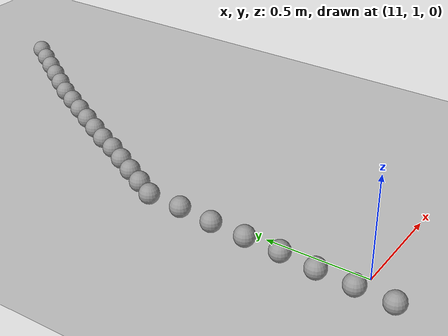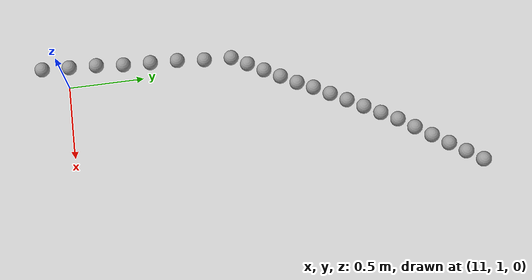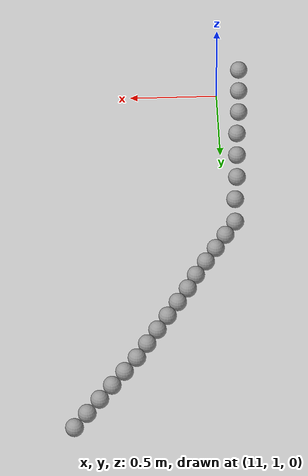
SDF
<sdf version="1.6">
 <world name="default">
  <model name="ground_plane">
   <static>1</static>
   <link name="link">
    <collision name="collision">
     <geometry><plane><normal>0 0 1</normal><size>100 100</size></plane></geometry>
     <surface><friction><ode><mu>100</mu><mu2>50</mu2></ode></friction></surface>
    </collision>
    <visual name="visual">
     <cast_shadows>0</cast_shadows>
     <geometry><plane><normal>0 0 1</normal><size>100 100</size></plane></geometry>
     <material>
      <script><uri>file://media/materials/scripts/gazebo.material</uri><name>Gazebo/Grey</name></script>
     </material>
    </visual>
   </link>
  </model>
  <model name="unit_sphere_0_415">
   <pose>11.890000 3.630000 0.050000 0 -0 0</pose>
   <link name="link">
    <inertial>
     <mass>1</mass>
     <inertia><ixx>0.1</ixx><ixy>0</ixy><ixz>0</ixz><iyy>0.1</iyy><iyz>0</iyz><izz>0.1</izz></inertia>
    </inertial>
    <collision name="collision"><geometry><sphere><radius>0.050000</radius></sphere></geometry></collision>
    <visual name="visual">
     <geometry><sphere><radius>0.050000</radius></sphere></geometry>
     <material>
      <script><name>Gazebo/Grey</name><uri>file://media/materials/scripts/gazebo.material</uri></script>
     </material>
    </visual>
   </link>
  </model>
  <model name="unit_sphere_0_416">
   <pose>11.820000 3.530000 0.050000 0 -0 0</pose>
   <link name="link">
    <inertial>
     <mass>1</mass>
     <inertia><ixx>0.1</ixx><ixy>0</ixy><ixz>0</ixz><iyy>0.1</iyy><iyz>0</iyz><izz>0.1</izz></inertia>
    </inertial>
    <collision name="collision"><geometry><sphere><radius>0.050000</radius></sphere></geometry></collision>
    <visual name="visual">
     <geometry><sphere><radius>0.050000</radius></sphere></geometry>
     <material>
      <script><name>Gazebo/Grey</name><uri>file://media/materials/scripts/gazebo.material</uri></script>
     </material>
    </visual>
   </link>
  </model>
  <model name="unit_sphere_0_417">
   <pose>11.750000 3.430000 0.050000 0 -0 0</pose>
   <link name="link">
    <inertial>
     <mass>1</mass>
     <inertia><ixx>0.1</ixx><ixy>0</ixy><ixz>0</ixz><iyy>0.1</iyy><iyz>0</iyz><izz>0.1</izz></inertia>
    </inertial>
    <collision name="collision"><geometry><sphere><radius>0.050000</radius></sphere></geometry></collision>
    <visual name="visual">
     <geometry><sphere><radius>0.050000</radius></sphere></geometry>
     <material>
      <script><name>Gazebo/Grey</name><uri>file://media/materials/scripts/gazebo.material</uri></script>
     </material>
    </visual>
   </link>
  </model>
  <model name="unit_sphere_0_418">
   <pose>11.680000 3.330000 0.050000 0 -0 0</pose>
   <link name="link">
    <inertial>
     <mass>1</mass>
     <inertia><ixx>0.1</ixx><ixy>0</ixy><ixz>0</ixz><iyy>0.1</iyy><iyz>0</iyz><izz>0.1</izz></inertia>
    </inertial>
    <collision name="collision"><geometry><sphere><radius>0.050000</radius></sphere></geometry></collision>
    <visual name="visual">
     <geometry><sphere><radius>0.050000</radius></sphere></geometry>
     <material>
      <script><name>Gazebo/Grey</name><uri>file://media/materials/scripts/gazebo.material</uri></script>
     </material>
    </visual>
   </link>
  </model>
  <model name="unit_sphere_0_419">
   <pose>11.610000 3.230000 0.050000 0 -0 0</pose>
   <link name="link">
    <inertial>
     <mass>1</mass>
     <inertia><ixx>0.1</ixx><ixy>0</ixy><ixz>0</ixz><iyy>0.1</iyy><iyz>0</iyz><izz>0.1</izz></inertia>
    </inertial>
    <collision name="collision"><geometry><sphere><radius>0.050000</radius></sphere></geometry></collision>
    <visual name="visual">
     <geometry><sphere><radius>0.050000</radius></sphere></geometry>
     <material>
      <script><name>Gazebo/Grey</name><uri>file://media/materials/scripts/gazebo.material</uri></script>
     </material>
    </visual>
   </link>
  </model>
  <model name="unit_sphere_0_420">
   <pose>11.540000 3.130000 0.050000 0 -0 0</pose>
   <link name="link">
    <inertial>
     <mass>1</mass>
     <inertia><ixx>0.1</ixx><ixy>0</ixy><ixz>0</ixz><iyy>0.1</iyy><iyz>0</iyz><izz>0.1</izz></inertia>
    </inertial>
    <collision name="collision"><geometry><sphere><radius>0.050000</radius></sphere></geometry></collision>
    <visual name="visual">
     <geometry><sphere><radius>0.050000</radius></sphere></geometry>
     <material>
      <script><name>Gazebo/Grey</name><uri>file://media/materials/scripts/gazebo.material</uri></script>
     </material>
    </visual>
   </link>
  </model>
  <model name="unit_sphere_0_421">
   <pose>11.480000 3.027000 0.050000 0 -0 0</pose>
   <link name="link">
    <inertial>
     <mass>1</mass>
     <inertia><ixx>0.1</ixx><ixy>0</ixy><ixz>0</ixz><iyy>0.1</iyy><iyz>0</iyz><izz>0.1</izz></inertia>
    </inertial>
    <collision name="collision"><geometry><sphere><radius>0.050000</radius></sphere></geometry></collision>
    <visual name="visual">
     <geometry><sphere><radius>0.050000</radius></sphere></geometry>
     <material>
      <script><name>Gazebo/Grey</name><uri>file://media/materials/scripts/gazebo.material</uri></script>
     </material>
    </visual>
   </link>
  </model>
  <model name="unit_sphere_0_422">
   <pose>11.420000 2.924000 0.050000 0 -0 0</pose>
   <link name="link">
    <inertial>
     <mass>1</mass>
     <inertia><ixx>0.1</ixx><ixy>0</ixy><ixz>0</ixz><iyy>0.1</iyy><iyz>0</iyz><izz>0.1</izz></inertia>
    </inertial>
    <collision name="collision"><geometry><sphere><radius>0.050000</radius></sphere></geometry></collision>
    <visual name="visual">
     <geometry><sphere><radius>0.050000</radius></sphere></geometry>
     <material>
      <script><name>Gazebo/Grey</name><uri>file://media/materials/scripts/gazebo.material</uri></script>
     </material>
    </visual>
   </link>
  </model>
  <model name="unit_sphere_0_423">
   <pose>11.360000 2.821000 0.050000 0 -0 0</pose>
   <link name="link">
    <inertial>
     <mass>1</mass>
     <inertia><ixx>0.1</ixx><ixy>0</ixy><ixz>0</ixz><iyy>0.1</iyy><iyz>0</iyz><izz>0.1</izz></inertia>
    </inertial>
    <collision name="collision"><geometry><sphere><radius>0.050000</radius></sphere></geometry></collision>
    <visual name="visual">
     <geometry><sphere><radius>0.050000</radius></sphere></geometry>
     <material>
      <script><name>Gazebo/Grey</name><uri>file://media/materials/scripts/gazebo.material</uri></script>
     </material>
    </visual>
   </link>
  </model>
  <model name="unit_sphere_0_424">
   <pose>11.300000 2.718000 0.050000 0 -0 0</pose>
   <link name="link">
    <inertial>
     <mass>1</mass>
     <inertia><ixx>0.1</ixx><ixy>0</ixy><ixz>0</ixz><iyy>0.1</iyy><iyz>0</iyz><izz>0.1</izz></inertia>
    </inertial>
    <collision name="collision"><geometry><sphere><radius>0.050000</radius></sphere></geometry></collision>
    <visual name="visual">
     <geometry><sphere><radius>0.050000</radius></sphere></geometry>
     <material>
      <script><name>Gazebo/Grey</name><uri>file://media/materials/scripts/gazebo.material</uri></script>
     </material>
    </visual>
   </link>
  </model>
  <model name="unit_sphere_0_425">
   <pose>11.240000 2.615000 0.050000 0 -0 0</pose>
   <link name="link">
    <inertial>
     <mass>1</mass>
     <inertia><ixx>0.1</ixx><ixy>0</ixy><ixz>0</ixz><iyy>0.1</iyy><iyz>0</iyz><izz>0.1</izz></inertia>
    </inertial>
    <collision name="collision"><geometry><sphere><radius>0.050000</radius></sphere></geometry></collision>
    <visual name="visual">
     <geometry><sphere><radius>0.050000</radius></sphere></geometry>
     <material>
      <script><name>Gazebo/Grey</name><uri>file://media/materials/scripts/gazebo.material</uri></script>
     </material>
    </visual>
   </link>
  </model>
  <model name="unit_sphere_0_426">
   <pose>11.190000 2.512000 0.050000 0 -0 0</pose>
   <link name="link">
    <inertial>
     <mass>1</mass>
     <inertia><ixx>0.1</ixx><ixy>0</ixy><ixz>0</ixz><iyy>0.1</iyy><iyz>0</iyz><izz>0.1</izz></inertia>
    </inertial>
    <collision name="collision"><geometry><sphere><radius>0.050000</radius></sphere></geometry></collision>
    <visual name="visual">
     <geometry><sphere><radius>0.050000</radius></sphere></geometry>
     <material>
      <script><name>Gazebo/Grey</name><uri>file://media/materials/scripts/gazebo.material</uri></script>
     </material>
    </visual>
   </link>
  </model>
  <model name="unit_sphere_0_427">
   <pose>11.130000 2.409000 0.050000 0 -0 0</pose>
   <link name="link">
    <inertial>
     <mass>1</mass>
     <inertia><ixx>0.1</ixx><ixy>0</ixy><ixz>0</ixz><iyy>0.1</iyy><iyz>0</iyz><izz>0.1</izz></inertia>
    </inertial>
    <collision name="collision"><geometry><sphere><radius>0.050000</radius></sphere></geometry></collision>
    <visual name="visual">
     <geometry><sphere><radius>0.050000</radius></sphere></geometry>
     <material>
      <script><name>Gazebo/Grey</name><uri>file://media/materials/scripts/gazebo.material</uri></script>
     </material>
    </visual>
   </link>
  </model>
  <model name="unit_sphere_0_428">
   <pose>11.070000 2.306000 0.050000 0 -0 0</pose>
   <link name="link">
    <inertial>
     <mass>1</mass>
     <inertia><ixx>0.1</ixx><ixy>0</ixy><ixz>0</ixz><iyy>0.1</iyy><iyz>0</iyz><izz>0.1</izz></inertia>
    </inertial>
    <collision name="collision"><geometry><sphere><radius>0.050000</radius></sphere></geometry></collision>
    <visual name="visual">
     <geometry><sphere><radius>0.050000</radius></sphere></geometry>
     <material>
      <script><name>Gazebo/Grey</name><uri>file://media/materials/scripts/gazebo.material</uri></script>
     </material>
    </visual>
   </link>
  </model>
  <model name="unit_sphere_0_429">
   <pose>11.010000 2.203000 0.050000 0 -0 0</pose>
   <link name="link">
    <inertial>
     <mass>1</mass>
     <inertia><ixx>0.1</ixx><ixy>0</ixy><ixz>0</ixz><iyy>0.1</iyy><iyz>0</iyz><izz>0.1</izz></inertia>
    </inertial>
    <collision name="collision"><geometry><sphere><radius>0.050000</radius></sphere></geometry></collision>
    <visual name="visual">
     <geometry><sphere><radius>0.050000</radius></sphere></geometry>
     <material>
      <script><name>Gazebo/Grey</name><uri>file://media/materials/scripts/gazebo.material</uri></script>
     </material>
    </visual>
   </link>
  </model>
  <model name="unit_sphere_0_430">
   <pose>10.950000 2.100000 0.050000 0 -0 0</pose>
   <link name="link">
    <inertial>
     <mass>1</mass>
     <inertia><ixx>0.1</ixx><ixy>0</ixy><ixz>0</ixz><iyy>0.1</iyy><iyz>0</iyz><izz>0.1</izz></inertia>
    </inertial>
    <collision name="collision"><geometry><sphere><radius>0.050000</radius></sphere></geometry></collision>
    <visual name="visual">
     <geometry><sphere><radius>0.050000</radius></sphere></geometry>
     <material>
      <script><name>Gazebo/Grey</name><uri>file://media/materials/scripts/gazebo.material</uri></script>
     </material>
    </visual>
   </link>
  </model>
  <model name="unit_sphere_0_431">
   <pose>10.940000 1.919000 0.050000 0 -0 0</pose>
   <link name="link">
    <inertial>
     <mass>1</mass>
     <inertia><ixx>0.1</ixx><ixy>0</ixy><ixz>0</ixz><iyy>0.1</iyy><iyz>0</iyz><izz>0.1</izz></inertia>
    </inertial>
    <collision name="collision"><geometry><sphere><radius>0.050000</radius></sphere></geometry></collision>
    <visual name="visual">
     <geometry><sphere><radius>0.050000</radius></sphere></geometry>
     <material>
      <script><name>Gazebo/Grey</name><uri>file://media/materials/scripts/gazebo.material</uri></script>
     </material>
    </visual>
   </link>
  </model>
  <model name="unit_sphere_0_432">
   <pose>10.920000 1.738000 0.050000 0 -0 0</pose>
   <link name="link">
    <inertial>
     <mass>1</mass>
     <inertia><ixx>0.1</ixx><ixy>0</ixy><ixz>0</ixz><iyy>0.1</iyy><iyz>0</iyz><izz>0.1</izz></inertia>
    </inertial>
    <collision name="collision"><geometry><sphere><radius>0.050000</radius></sphere></geometry></collision>
    <visual name="visual">
     <geometry><sphere><radius>0.050000</radius></sphere></geometry>
     <material>
      <script><name>Gazebo/Grey</name><uri>file://media/materials/scripts/gazebo.material</uri></script>
     </material>
    </visual>
   </link>
  </model>
  <model name="unit_sphere_0_433">
   <pose>10.910000 1.557000 0.050000 0 -0 0</pose>
   <link name="link">
    <inertial>
     <mass>1</mass>
     <inertia><ixx>0.1</ixx><ixy>0</ixy><ixz>0</ixz><iyy>0.1</iyy><iyz>0</iyz><izz>0.1</izz></inertia>
    </inertial>
    <collision name="collision"><geometry><sphere><radius>0.050000</radius></sphere></geometry></collision>
    <visual name="visual">
     <geometry><sphere><radius>0.050000</radius></sphere></geometry>
     <material>
      <script><name>Gazebo/Grey</name><uri>file://media/materials/scripts/gazebo.material</uri></script>
     </material>
    </visual>
   </link>
  </model>
  <model name="unit_sphere_0_434">
   <pose>10.900000 1.376000 0.050000 0 -0 0</pose>
   <link name="link">
    <inertial>
     <mass>1</mass>
     <inertia><ixx>0.1</ixx><ixy>0</ixy><ixz>0</ixz><iyy>0.1</iyy><iyz>0</iyz><izz>0.1</izz></inertia>
    </inertial>
    <collision name="collision"><geometry><sphere><radius>0.050000</radius></sphere></geometry></collision>
    <visual name="visual">
     <geometry><sphere><radius>0.050000</radius></sphere></geometry>
     <material>
      <script><name>Gazebo/Grey</name><uri>file://media/materials/scripts/gazebo.material</uri></script>
     </material>
    </visual>
   </link>
  </model>
  <model name="unit_sphere_0_435">
   <pose>10.880000 1.195000 0.050000 0 -0 0</pose>
   <link name="link">
    <inertial>
     <mass>1</mass>
     <inertia><ixx>0.1</ixx><ixy>0</ixy><ixz>0</ixz><iyy>0.1</iyy><iyz>0</iyz><izz>0.1</izz></inertia>
    </inertial>
    <collision name="collision"><geometry><sphere><radius>0.050000</radius></sphere></geometry></collision>
    <visual name="visual">
     <geometry><sphere><radius>0.050000</radius></sphere></geometry>
     <material>
      <script><name>Gazebo/Grey</name><uri>file://media/materials/scripts/gazebo.material</uri></script>
     </material>
    </visual>
   </link>
  </model>
  <model name="unit_sphere_0_436">
   <pose>10.870000 1.014000 0.050000 0 -0 0</pose>
   <link name="link">
    <inertial>
     <mass>1</mass>
     <inertia><ixx>0.1</ixx><ixy>0</ixy><ixz>0</ixz><iyy>0.1</iyy><iyz>0</iyz><izz>0.1</izz></inertia>
    </inertial>
    <collision name="collision"><geometry><sphere><radius>0.050000</radius></sphere></geometry></collision>
    <visual name="visual">
     <geometry><sphere><radius>0.050000</radius></sphere></geometry>
     <material>
      <script><name>Gazebo/Grey</name><uri>file://media/materials/scripts/gazebo.material</uri></script>
     </material>
    </visual>
   </link>
  </model>
  <model name="unit_sphere_0_437">
   <pose>10.860000 0.833000 0.050000 0 -0 0</pose>
   <link name="link">
    <inertial>
     <mass>1</mass>
     <inertia><ixx>0.1</ixx><ixy>0</ixy><ixz>0</ixz><iyy>0.1</iyy><iyz>0</iyz><izz>0.1</izz></inertia>
    </inertial>
    <collision name="collision"><geometry><sphere><radius>0.050000</radius></sphere></geometry></collision>
    <visual name="visual">
     <geometry><sphere><radius>0.050000</radius></sphere></geometry>
     <material>
      <script><name>Gazebo/Grey</name><uri>file://media/materials/scripts/gazebo.material</uri></script>
     </material>
    </visual>
   </link>
  </model>
 </world>
</sdf>
